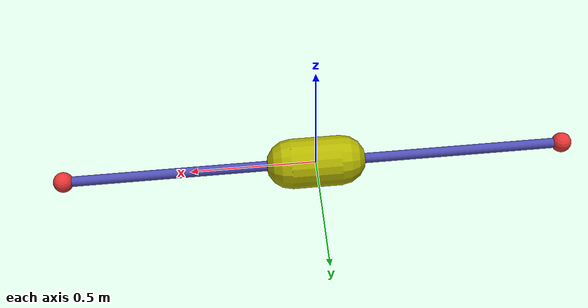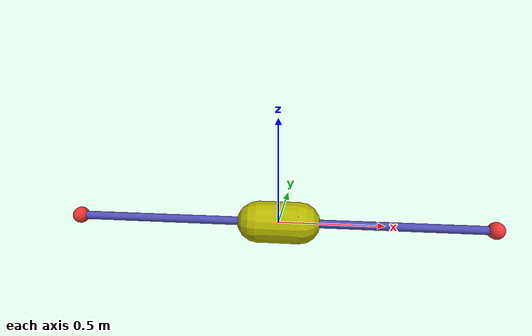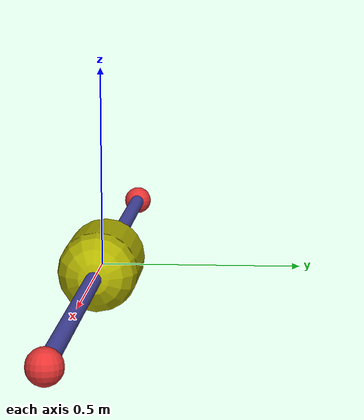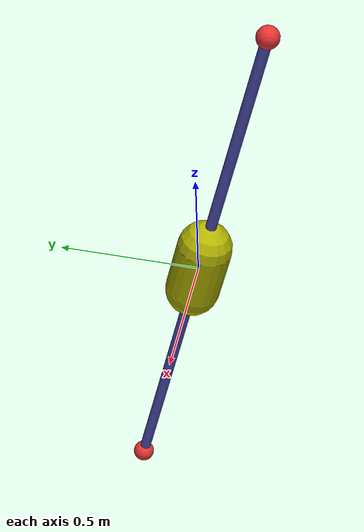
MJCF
<mujoco model="cart">
  <compiler inertiafromgeom="true"/>
  <custom>
    <numeric data="2" name="frame_skip"/>
  </custom>
  <default>
    <joint armature="0" damping="1" limited="true"/>
    <geom contype="0" friction="1 0.1 0.1" rgba="0.7 0.7 0 1"/>
    <tendon/>
    <motor ctrlrange="-3 3"/>
  </default>
  <option gravity="0 0 -9.81" integrator="RK4" timestep="0.02"/>
  <size nstack="3000"/>
  <worldbody>
    <geom conaffinity="0" contype="0" name="limit_left" pos="-1 0 0" rgba="0.9 0.2 0.2 1" size=".04" type="sphere"/>
    <geom conaffinity="0" contype="0" name="limit_right" pos="1 0 0" rgba="0.9 0.2 0.2 1" size=".04" type="sphere"/>

    <geom name="rail" pos="0 0 0" quat="0.707 0 0.707 0" rgba="0.3 0.3 0.7 1" size="0.02 1" type="capsule"/>
    <body name="cart" pos="0 0 0">
      <joint axis="1 0 0" limited="true" name="slider" pos="0 0 0" range="-1 1" type="slide"/>
      <geom name="cart" pos="0 0 0" quat="0.707 0 0.707 0" size="0.1 0.1" type="capsule"/>
    </body>
  </worldbody>
  <actuator>
    <motor gear="100" joint="slider" name="slide"/>
  </actuator>
</mujoco>
